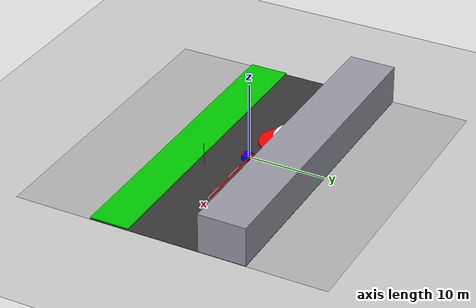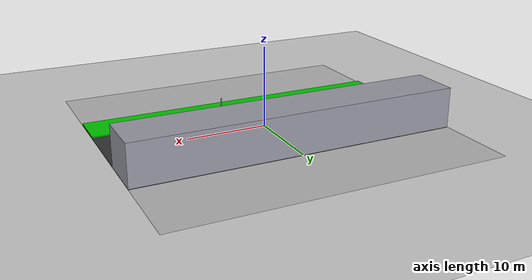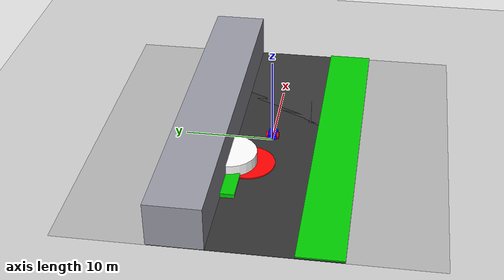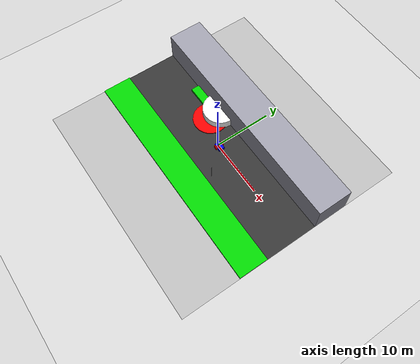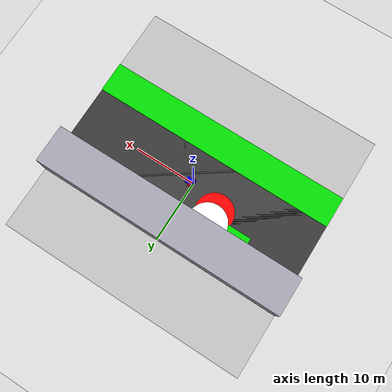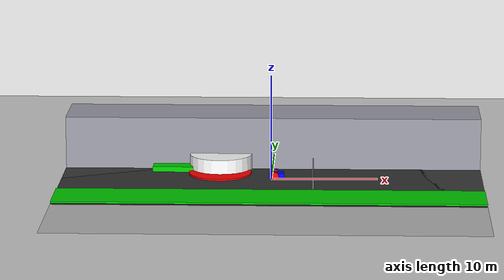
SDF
<sdf version="1.8">
 <world name="campus_world">
  <include><uri>file:///home/deyung/ros2_newws/src/mymasterproject/src/world/road.sdf</uri></include>
  <include>
   <uri>file:///home/deyung/ros2_newws/src/mymasterproject/src/vehicle_blue_description/models/model.sdf</uri>
   <name>vehicle_blue</name>
  </include>
  <include><uri>file:///home/deyung/ros2_newws/src/mymasterproject/src/world/newworld.sdf</uri></include>
  <physics name="1ms" type="ode">
   <max_step_size>0.001</max_step_size>
   <real_time_factor>1.0</real_time_factor>
  </physics>
  <plugin filename="libactor_pose_ros2.so" name="actor_pose_ros2">
   <base_frame>map</base_frame>
   <name_prefix>actor_</name_prefix>
   <pose_topic>/actors/poses</pose_topic>
   <pose_topic_prefix>/actors/</pose_topic_prefix>
   <actor_yaw_offset_deg>-90</actor_yaw_offset_deg>
   <publish_tf>true</publish_tf>
  </plugin>
  <plugin filename="gz-sim-triggered-publisher-system" name="gz::sim::systems::TriggeredPublisher">
   <input type="gz.msgs.Int32" topic="/keyboard/keypress"><match field="data">16777235</match></input>
   <output type="gz.msgs.Twist" topic="/model/newcar/cmd_vel">linear: {x: 2}, angular: {z: 0.0}</output>
  </plugin>
  <plugin filename="gz-sim-triggered-publisher-system" name="gz::sim::systems::TriggeredPublisher">
   <input type="gz.msgs.Int32" topic="/keyboard/keypress"><match field="data">16777237</match></input>
   <output type="gz.msgs.Twist" topic="/model/newcar/cmd_vel">linear: {x: -2}, angular: {z: 0.0}</output>
  </plugin>
  <plugin filename="gz-sim-triggered-publisher-system" name="gz::sim::systems::TriggeredPublisher">
   <input type="gz.msgs.Int32" topic="/keyboard/keypress"><match field="data">16777234</match></input>
   <output type="gz.msgs.Twist" topic="/model/newcar/cmd_vel">linear: {x: 0.01}, angular: {z: 2}</output>
  </plugin>
  <plugin filename="gz-sim-triggered-publisher-system" name="gz::sim::systems::TriggeredPublisher">
   <input type="gz.msgs.Int32" topic="/keyboard/keypress"><match field="data">16777236</match></input>
   <output type="gz.msgs.Twist" topic="/model/newcar/cmd_vel">linear: {x: 0.01}, angular: {z: -2}</output>
  </plugin>
  <plugin filename="gz-sim-triggered-publisher-system" name="gz::sim::systems::TriggeredPublisher">
   <input type="gz.msgs.Int32" topic="/keyboard/keypress"><match field="data">80</match></input>
   <output type="gz.msgs.Twist" topic="/model/newcar/cmd_vel">linear: {x: 0}, angular: {z: 0}</output>
  </plugin>
  <plugin filename="gz-sim-sensors-system" name="gz::sim::systems::Sensors">
   <render_engine>ogre2</render_engine>
  </plugin>
  <plugin filename="gz-sim-physics-system" name="gz::sim::systems::Physics"/>
  <plugin filename="gz-sim-user-commands-system" name="gz::sim::systems::UserCommands"/>
  <plugin filename="gz-sim-scene-broadcaster-system" name="gz::sim::systems::SceneBroadcaster"/>
  <plugin filename="gz-sim-imu-system" name="gz::sim::systems::Imu"/>
  <plugin filename="gz-sim-contact-system" name="gz::sim::systems::Contact"/>
  <light type="directional" name="sun">
   <pose>0 0 10 0 0 0</pose>
   <diffuse>0.8 0.8 0.8 1</diffuse>
   <specular>0.2 0.2 0.2 1</specular>
   <attenuation>
    <range>1000</range>
    <constant>0.9</constant>
    <linear>0.01</linear>
    <quadratic>0.001</quadratic>
   </attenuation>
   <direction>-0.5 0.1 -0.9</direction>
  </light>
  <model name="ground_plane">
   <static>true</static>
   <link name="link">
    <collision name="collision"><geometry><plane><normal>0 0 1</normal></plane></geometry></collision>
    <visual name="visual">
     <geometry><plane><normal>0 0 1</normal><size>100 100</size></plane></geometry>
     <material>
      <ambient>0.8 0.8 0.8 0</ambient>
      <diffuse>0.8 0.8 0.8 0</diffuse>
      <specular>0.8 0.8 0.8 0</specular>
     </material>
    </visual>
   </link>
  </model>
 </world>
</sdf>

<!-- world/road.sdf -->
<sdf version="1.9">
  <model name="campus">
    <static>true</static>

    <!-- ===== Ground plane ===== -->
    <link name="ground_plane">
      <collision name="collision">
        <geometry>
          <box><size>40 40 0.1</size></box>
        </geometry>
        <pose>0 0 0 0 0 0</pose>
      </collision>
      <visual name="visual">
        <geometry>
          <box><size>40 40 0.1</size></box>
        </geometry>
        <material>
          <ambient>0.35 0.35 0.35 0.2</ambient>
          <diffuse>0.35 0.35 0.35 0.2</diffuse>
        </material>
        <pose>0 0 -0.05 0 0 0</pose>
      </visual>
    </link>

    <!-- ===== Building block ===== -->
    <link name="building_block">
      <pose>0 7 2.5 0 0 0</pose>
      <collision name="collision">
        <geometry><box><size>40 6 5</size></box></geometry>
      </collision>
      <visual name="visual">
        <geometry><box><size>40 6 5</size></box></geometry>
        <material>
          <ambient>0.6 0.6 0.65 1</ambient>
          <diffuse>0.6 0.6 0.65 1</diffuse>
        </material>
      </visual>
    </link>

    <!-- ===== Road ===== -->
    <link name="road">
      <pose>0 0 0 0 0 0</pose>
      <collision name="coll">
        <geometry><box><size>40 20 0.1</size></box></geometry>
        <pose>0 0 0 0 0 0</pose>
      </collision>
      <visual name="vis">
        <geometry><box><size>40 20 0.1</size></box></geometry>
        <material>
          <ambient>0.2 0.2 0.2 1</ambient>
          <diffuse>0.2 0.2 0.2 1</diffuse>
        </material>
        <pose>0 0 -0.05 0 0 0</pose>
      </visual>
    </link>

    <!-- ===== Lamp pole ===== -->
    <link name="lamp_pole_1">
      <pose>4 -4 1.5 0 0 0</pose>
      <collision name="coll">
        <geometry><cylinder><radius>0.05</radius><length>3.0</length></cylinder></geometry>
      </collision>
      <visual name="vis">
        <geometry><cylinder><radius>0.05</radius><length>3.0</length></cylinder></geometry>
      </visual>
    </link>

    <!-- ===== Big lawn ===== -->
    <link name="big_lawn">
      <pose>0 -7.5 0.15 0 0 0</pose>
      <collision name="coll">
        <geometry><box><size>40 5 0.15</size></box></geometry>
      </collision>
      <visual name="vis">
        <geometry><box><size>40 5 0.15</size></box></geometry>
        <material>
          <ambient>0.0 0.6 0.0 1</ambient>
          <diffuse>0.0 0.8 0.0 1</diffuse>
        </material>
      </visual>
    </link>

    <!-- ===== Small lawn ===== -->
    <link name="small_lawn">
      <pose>-9 5 0 0 0 0</pose>
      <collision name="coll">
        <geometry><box><size>5 5 1</size></box></geometry>
      </collision>
      <visual name="vis">
        <geometry><box><size>5 5 1</size></box></geometry>
        <material>
          <ambient>0.0 0.6 0.0 1</ambient>
          <diffuse>0.0 0.8 0.0 1</diffuse>
        </material>
      </visual>
    </link>
    <!-- ===== road block ===== -->
    <link name="road block">
      <pose>-5 4 0 0 0 0</pose>
      <collision name="coll">
        <geometry>
                        <cylinder>
                            <radius>3</radius>
                            <length>3</length>
                        </cylinder>
        </geometry>
      </collision>
      <visual name="vis">
        <geometry>
                        <cylinder>
                            <radius>3</radius>
                            <length>3</length>
                        </cylinder>
        </geometry>
                    <material>
                        <ambient>1.0 1.0 1.0 1</ambient>
                        <diffuse>1.0 1.0 1.0 1</diffuse>
                        <specular>1.0 0.0 0.0 1</specular>
                    </material>
      </visual>
    </link>

  </model>

</sdf>

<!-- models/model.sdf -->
<sdf version="1.8">

        <model name='vehicle_blue' canonical_link='chassis'>

            <frame name="lidar_frame" attached_to='chassis'>
                    <pose>0.8 0 0.5 0 0 0</pose>
            </frame>
            <frame name="base_link" attached_to="chassis">
                    <pose>0 0 0 0 0 0</pose>
            </frame>

            <!--chassis-->
            <link name='chassis'>
                <pose relative_to='__model__'>0.5 0 0.4 0 0 0</pose>
                <inertial> <!--inertial properties of the link mass, inertia matix-->
                    <mass>1.14395</mass>
                    <inertia>
                        <ixx>3.5329</ixx>
                        <ixy>0</ixy>
                        <ixz>0</ixz>
                        <iyy>3.81317</iyy>
                        <iyz>0</iyz>
                        <izz>4.76646</izz>
                    </inertia>
                </inertial>
                <visual name='visual'>
                    <geometry>
                        <box>
                            <size>1.4 1.0 0.5</size>
                        </box>
                    </geometry>
                    <!--Color of the link-->
                    <material>
                        <ambient>0.0 0.0 1.0 1</ambient>
                        <diffuse>0.0 0.0 1.0 1</diffuse>
                        <specular>0.0 0.0 1.0 1</specular>
                    </material>
                </visual>
                <collision name='collision'>
                    <geometry>
                        <box>
                            <size>1.4 1.0 0.5</size>
                        </box>
                    </geometry>
                </collision>
                <sensor name="imu_sensor" type="imu">
                    <always_on>1</always_on>
                    <update_rate>1</update_rate>
                    <visualize>true</visualize>
                    <topic>imu</topic>
                </sensor>

                <sensor name='gpu_lidar' type='gpu_lidar'>
                    <pose relative_to='lidar_frame'>0 0 0 0 0 0</pose>
                    <topic>/scan</topic>
                    <update_rate>5</update_rate>
                    <ray>
                        <scan>
                            <horizontal>
                                <samples>180</samples>
                                <resolution>1</resolution>
                                <min_angle>-1.396263</min_angle>
                                <max_angle>1.396263</max_angle>
                            </horizontal>
                            <vertical>
                                <samples>1</samples>
                                <resolution>0.01</resolution>
                                <min_angle>0</min_angle>
                                <max_angle>0</max_angle>
                            </vertical>
                        </scan>
                        <range>
                            <min>0.08</min>
                            <max>100.0</max>
                            <resolution>0.01</resolution>
                        </range>
                    </ray>
                    <always_on>1</always_on>
                    <visualize>true</visualize>
                </sensor>
                <!-- Contact (bumper) sensor -->
                <sensor name="bumper_contacts" type="contact">
                      <update_rate>50</update_rate>
                      <!-- Monitor this/these collision(s) for contacts -->
                      <contact>
                        <collision>collision</collision>
                      </contact>
                      <!-- Gazebo Transport topic name -->
                      <topic>contacts</topic>
                      <always_on>true</always_on>
                      <visualize>false</visualize>
                </sensor>
            </link>

            <!--Left wheel-->
            <link name='left_wheel'>
                <pose relative_to="chassis">-0.2 0.6 0 -1.5707 0 0</pose> <!--angles are in radian-->
                <inertial>
                    <mass>1</mass>
                    <inertia>
                        <ixx>0.043333</ixx>
                        <ixy>0</ixy>
                        <ixz>0</ixz>
                        <iyy>0.043333</iyy>
                        <iyz>0</iyz>
                        <izz>0.08</izz>
                    </inertia>
                </inertial>
                <visual name='visual'>
                    <geometry>
                        <cylinder>
                            <radius>0.4</radius>
                            <length>0.2</length>
                        </cylinder>
                    </geometry>
                    <material>
                        <ambient>1.0 0.0 0.0 1</ambient>
                        <diffuse>1.0 0.0 0.0 1</diffuse>
                        <specular>1.0 0.0 0.0 1</specular>
                    </material>
                </visual>
                <collision name='collision'>
                    <geometry>
                        <cylinder>
                            <radius>0.4</radius>
                            <length>0.2</length>
                        </cylinder>
                    </geometry>
                </collision>
            </link>

            <!--The same as left wheel but with different position-->
            <link name='right_wheel'>
                <pose relative_to="chassis">-0.2 -0.6 0 -1.5707 0 0</pose> <!--angles are in radian-->
                <inertial>
                    <mass>1</mass>
                    <inertia>
                        <ixx>0.043333</ixx>
                        <ixy>0</ixy>
                        <ixz>0</ixz>
                        <iyy>0.043333</iyy>
                        <iyz>0</iyz>
                        <izz>0.08</izz>
                    </inertia>
                </inertial>
                <visual name='visual'>
                    <geometry>
                        <cylinder>
                            <radius>0.4</radius>
                            <length>0.2</length>
                        </cylinder>
                    </geometry>
                    <material>
                        <ambient>1.0 0.0 0.0 1</ambient>
                        <diffuse>1.0 0.0 0.0 1</diffuse>
                        <specular>1.0 0.0 0.0 1</specular>
                    </material>
                </visual>
                <collision name='collision'>
                    <geometry>
                        <cylinder>
                            <radius>0.4</radius>
                            <length>0.2</length>
                        </cylinder>
                    </geometry>
                </collision>
            </link>

            <!--arbitrary frame-->
            <frame name="caster_frame" attached_to='chassis'>
                <pose>0.8 0 -0.2 0 0 0</pose>
            </frame>

            <!--caster wheel-->
            <link name='caster'>
                <pose relative_to='caster_frame'>-0.5 0 0 0 0 0</pose>
                <inertial>
                    <mass>1</mass>
                    <inertia>
                        <ixx>0.016</ixx>
                        <ixy>0</ixy>
                        <ixz>0</ixz>
                        <iyy>0.016</iyy>
                        <iyz>0</iyz>
                        <izz>0.016</izz>
                    </inertia>
                </inertial>
                <visual name='visual'>
                    <geometry>
                        <sphere>
                            <radius>0.2</radius>
                        </sphere>
                    </geometry>
                    <material>
                        <ambient>0.0 1 0.0 1</ambient>
                        <diffuse>0.0 1 0.0 1</diffuse>
                        <specular>0.0 1 0.0 1</specular>
                    </material>
                </visual>
                <collision name='collision'>
                    <geometry>
                        <sphere>
                            <radius>0.2</radius>
                        </sphere>
                    </geometry>
                </collision>
            </link>

            <!--left wheel joint-->
            <joint name='left_wheel_joint' type='revolute'>
                <pose relative_to='left_wheel'/>
                <parent>chassis</parent>
                <child>left_wheel</child>
                <axis>
                    <xyz expressed_in='__model__'>0 1 0</xyz> <!--can be descired to any frame or even arbitrary frames-->
                    <limit>
                        <lower>-1.79769e+308</lower>    <!--negative infinity-->
                        <upper>1.79769e+308</upper>     <!--positive infinity-->
                    </limit>
                </axis>
            </joint>

            <!--right wheel joint-->
            <joint name='right_wheel_joint' type='revolute'>
                <pose relative_to='right_wheel'/>
                <parent>chassis</parent>
                <child>right_wheel</child>
                <axis>
                    <xyz expressed_in='__model__'>0 1 0</xyz>
                    <limit>
                        <lower>-1.79769e+308</lower>    <!--negative infinity-->
                        <upper>1.79769e+308</upper>     <!--positive infinity-->
                    </limit>
                </axis>
            </joint>

            <!--caster wheel joint--> <!--pose defult value is the child-->
            <joint name='caster_wheel' type='ball'>
                <parent>chassis</parent>
                <child>caster</child>
            </joint>

            <plugin filename="gz-sim-diff-drive-system"
                    name="gz::sim::systems::DiffDrive">
              <left_joint>left_wheel_joint</left_joint>
              <right_joint>right_wheel_joint</right_joint>
              <odometry_topic>/model/vehicle_blue/odometry</odometry_topic>
              <tf_topic>/tf</tf_topic>
              <frame_id>odom</frame_id>
              <child_frame_id>base_link</child_frame_id>

              <wheel_separation>1.2</wheel_separation>
              <wheel_radius>0.4</wheel_radius>
              <topic>cmd_vel</topic>
              <!-- pub rate -->
            </plugin>

        </model>
</sdf>

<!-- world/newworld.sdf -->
<sdf version="1.9">
  <model name="road block">
    <static>true</static>

    <!-- ===== Small lawn ===== -->
    <link name="road block">
      <pose>-5 2 0 0 0 0</pose>
      <collision name="coll">
        <geometry>
                        <cylinder>
                            <radius>3</radius>
                            <length>0.3</length>
                        </cylinder>
        </geometry>
      </collision>
      <visual name="vis">
        <geometry>
                        <cylinder>
                            <radius>3</radius>
                            <length>0.3</length>
                        </cylinder>
        </geometry>
                    <material>
                        <ambient>1.0 0.0 0.0 1</ambient>
                        <diffuse>1.0 0.0 0.0 1</diffuse>
                        <specular>1.0 0.0 0.0 1</specular>
                    </material>
      </visual>
    </link>

  </model>
</sdf>
